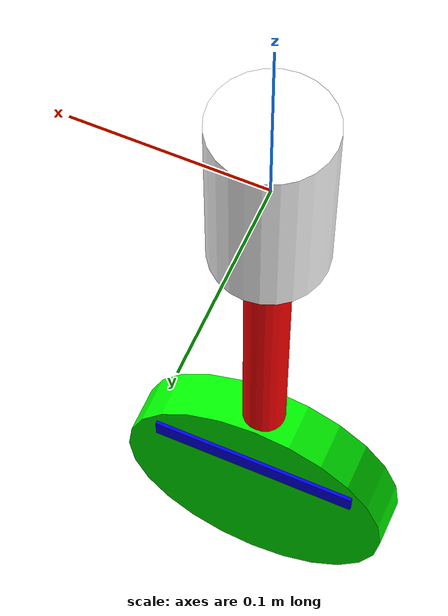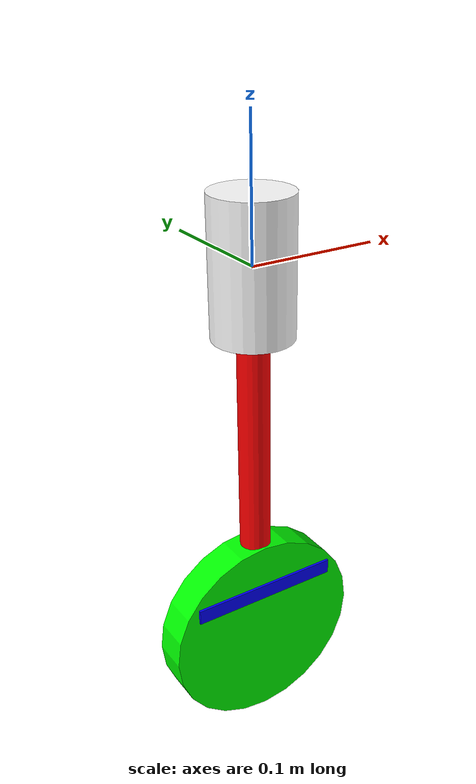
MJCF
<mujoco model="pendulo_rueda_inercial">

  <compiler angle="radian"/>

  <option timestep="0.002" gravity="0 0 -9.81" integrator="RK4"/>

  <default>
    <joint damping="0.001" frictionloss="0.0005"/>
    <geom rgba="0.75 0.75 0.75 1"/>
  </default>

  <visual>
    <headlight ambient="0.3 0.3 0.3" diffuse="0.6 0.6 0.6"/>
    <global offwidth="800" offheight="600"/>
  </visual>

  <worldbody>
    <light pos="0 -1 2" dir="0 0.5 -1" diffuse="0.9 0.9 0.9"/>
    <camera name="fija" pos="0 -0.9 -0.15" xyaxes="1 0 0 0 0 1"/>

    <!-- Soporte fijo del pivote -->
    <geom name="soporte" type="cylinder" size="0.03 0.05" pos="0 0 0"
          rgba="127 127 127 1" contype="0" conaffinity="0"/>

    <!-- Brazo del péndulo, cuelga desde el pivote en (0,0,0) -->
    <body name="pendulo" pos="0 0 0">
      <joint name="pendulo_joint" type="hinge" axis="0 1 0" pos="0 0 0"/>

      <!-- Barra: del pivote (0,0,0) hacia abajo, longitud 0.30 m -->
      <geom name="barra" type="capsule" fromto="0 0 0 0 0 -0.30" size="0.012"
            mass="0.25" rgba="255 0 0 1" contype="0" conaffinity="0"/>

      <!-- Rueda inercial en la punta del brazo -->
      <body name="rueda" pos="0 0 -0.30">
        <joint name="rueda_joint" type="hinge" axis="0 1 0" pos="0 0 0"/>
        <!-- Disco delgado; su eje de simetria coincide con el eje de giro (Y) -->
        <geom name="disco" type="cylinder" fromto="0 -0.014 0 0 0.014 0"
              size="0.08" mass="0.35" rgba="0 255 0 1"
              contype="0" conaffinity="0"/>
        <!-- Marca visual para notar que la rueda gira -->
        <geom name="marca" type="box" size="0.06 0.016 0.006"
              pos="0 0 0.04" rgba="0 0 255 1" contype="0" conaffinity="0"/>
      </body>
    </body>
  </worldbody>

  <actuator>
    <!-- Motor de torque directo sobre la rueda. Unidad: N*m (gear=1) -->
    <motor name="motor_rueda" joint="rueda_joint" ctrllimited="true"
           ctrlrange="-1.0 1.0" gear="1"/>
  </actuator>

  <sensor>
    <jointpos name="pendulo_pos" joint="pendulo_joint"/>
    <jointvel name="pendulo_vel" joint="pendulo_joint"/>
    <jointvel name="rueda_vel" joint="rueda_joint"/>
  </sensor>
</mujoco>
